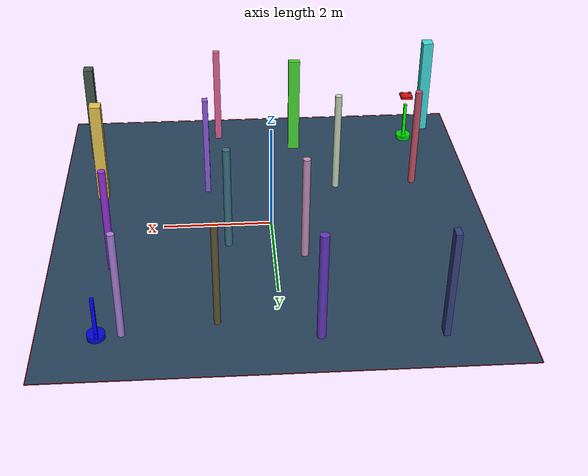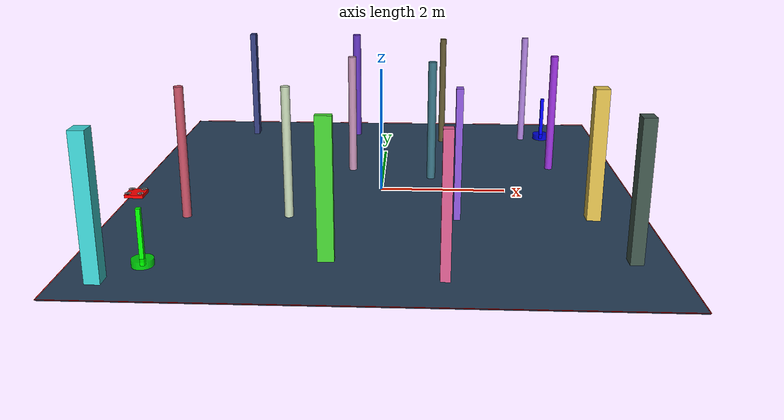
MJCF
<?xml version='1.0' encoding='utf-8'?>
<mujoco model="complex_uav_env">
  <compiler angle="degree" coordinate="local" inertiafromgeom="true" />
  <option integrator="RK4" timestep="0.01" />

  <visual>
    <headlight diffuse="0.6 0.6 0.6" ambient="0.3 0.3 0.3" />
    <rgba haze="0.15 0.25 0.35 1" />
    <global offwidth="2560" offheight="1440" />
  </visual>

  <asset>
    <texture type="skybox" builtin="gradient" rgb1="0.3 0.5 0.7" rgb2="0 0 0" width="512" height="3072" />
    <texture name="grid" type="2d" builtin="checker" rgb1="0.1 0.2 0.3" rgb2="0.2 0.3 0.4" width="512" height="512" />
    <material name="grid" texture="grid" texrepeat="1 1" />
  </asset>

  <worldbody>

    <geom name="ground" type="plane" size="4.0 4.0 0.1" material="grid" />
    <light name="light1" pos="0 0 4" dir="0 0 -1" diffuse="1 1 1" />

    <geom name="start_marker" type="cylinder" size="0.15 0.05" pos="-3.0 -3.0 0.05" rgba="0 1 0 0.8" />
    <geom name="start_pole" type="box" size="0.03 0.03 0.4" pos="-3.0 -3.0 0.4" rgba="0 1 0 1" />

    <geom name="goal_marker" type="cylinder" size="0.15 0.05" pos="3.0 3.0 0.05" rgba="0 0 1 0.8" />
    <geom name="goal_pole" type="box" size="0.03 0.03 0.4" pos="3.0 3.0 0.4" rgba="0 0 1 1" />

    <body name="chassis" pos="-3.0 -3.0 1.0">
      <joint type="free" name="root" />
      <geom type="box" size="0.12 0.12 0.02" rgba="1.0 0.0 0.0 1.0" mass="0.8" />

      <geom type="box" size="0.08 0.01 0.005" pos="0 0 0.01" rgba="0.3 0.3 0.3 1" />
      <geom type="box" size="0.01 0.08 0.005" pos="0 0 0.01" rgba="0.3 0.3 0.3 1" />

      <geom type="cylinder" size="0.015 0.02" pos="0.08 0.08 0.015" rgba="0.2 0.2 0.2 1" />
      <geom type="cylinder" size="0.015 0.02" pos="-0.08 0.08 0.015" rgba="0.2 0.2 0.2 1" />
      <geom type="cylinder" size="0.015 0.02" pos="0.08 -0.08 0.015" rgba="0.2 0.2 0.2 1" />
      <geom type="cylinder" size="0.015 0.02" pos="-0.08 -0.08 0.015" rgba="0.2 0.2 0.2 1" />

      <geom type="cylinder" size="0.04 0.002" pos="0.08 0.08 0.035" rgba="0.7 0.7 0.7 0.8" />
      <geom type="cylinder" size="0.04 0.002" pos="-0.08 0.08 0.035" rgba="0.7 0.7 0.7 0.8" />
      <geom type="cylinder" size="0.04 0.002" pos="0.08 -0.08 0.035" rgba="0.7 0.7 0.7 0.8" />
      <geom type="cylinder" size="0.04 0.002" pos="-0.08 -0.08 0.035" rgba="0.7 0.7 0.7 0.8" />

      <site name="motor1" pos="0.08 0.08 0" size="0.01" />
      <site name="motor2" pos="-0.08 0.08 0" size="0.01" />
      <site name="motor3" pos="0.08 -0.08 0" size="0.01" />
      <site name="motor4" pos="-0.08 -0.08 0" size="0.01" />
    </body>
    <geom name="test_obs_0" type="box" size="0.050372097743241556 0.07686035712315534 1.0" pos="1.1732947084151437 -1.211486841254944 1.0" rgba="0.5469274306329154 0.33994185508817215 0.8533498409059768 1.0" />
    <geom name="test_obs_1" type="box" size="0.09026984959424886 0.10595794646870768 1.0" pos="3.4594203862787163 -2.638834159122047 1.0" rgba="0.24882710280572873 0.3367319054094219 0.29914715805267766 1.0" />
    <geom name="test_obs_2" type="cylinder" size="0.06962309159626799 1.0" pos="0.8140963827337322 0.6057663253539787 1.0" rgba="0.2215825680361726 0.4436480842266488 0.5124176641756438 1.0" />
    <geom name="test_obs_3" type="box" size="0.11204272233949872 0.05538453414986839 1.0" pos="-0.6208580345521534 -2.7487935140448387 1.0" rgba="0.27310180140784174 0.8353760195839833 0.19536981751386773 1.0" />
    <geom name="test_obs_4" type="cylinder" size="0.07633028411386941 1.0" pos="-0.6115806755378007 3.1700394498370295 1.0" rgba="0.3853860596668395 0.20376915335221524 0.7405742647397555 1.0" />
    <geom name="test_obs_5" type="cylinder" size="0.06628990166646978 1.0" pos="-1.3393057625726863 -1.219352922443493 1.0" rgba="0.7662184254010138 0.8355233093657625 0.70649461786815 1.0" />
    <geom name="test_obs_6" type="cylinder" size="0.05687273672384668 1.0" pos="1.0515887990076727 2.7528416684239487 1.0" rgba="0.3808448255035952 0.33824628205815027 0.19350475154396796 1.0" />
    <geom name="test_obs_7" type="box" size="0.06607586645287844 0.05758668297783171 1.0" pos="0.938504277806419 -3.271503481050828 1.0" rgba="0.8621960879663436 0.3680997921273088 0.5648199075430234 1.0" />
    <geom name="test_obs_8" type="cylinder" size="0.0671995687718927 1.0" pos="-2.871181255201575 -1.288496345430394 1.0" rgba="0.7645567268593569 0.31111505150869956 0.391674459928509 1.0" />
    <geom name="test_obs_9" type="cylinder" size="0.06502354002230988 1.0" pos="2.8848829513936236 1.1750581524039871 1.0" rgba="0.5940713488044908 0.18697977082244632 0.8495790088017925 1.0" />
    <geom name="test_obs_10" type="box" size="0.10433216153345184 0.11292386823495024 1.0" pos="-3.4592350799360965 -3.4674056392058956 1.0" rgba="0.24351994701371416 0.8385886283674422 0.8460139893349917 1.0" />
    <geom name="test_obs_11" type="box" size="0.05173931601946187 0.0973245750744821 1.0" pos="-2.629675358152134 3.199878780282026 1.0" rgba="0.2006305192635824 0.23933198708030823 0.4946496566754013 1.0" />
    <geom name="test_obs_12" type="cylinder" size="0.0677334142776701 1.0" pos="-0.5391068948784221 0.9950609432810956 1.0" rgba="0.7483994991116244 0.5558622901732083 0.6956722077127673 1.0" />
    <geom name="test_obs_13" type="cylinder" size="0.06032982998038072 1.0" pos="2.604238464573329 2.951128820778203 1.0" rgba="0.6655930659973089 0.4932337341612051 0.8441331908158926 1.0" />
    <geom name="test_obs_14" type="box" size="0.10355313662223736 0.1060211526233944 1.0" pos="3.19816146616777 -1.122815326903856 1.0" rgba="0.8874368296336085 0.7583797232007965 0.30624546035815436 1.0" />
  <geom name="boundary_north" type="box" size="4.0 0.005 0.002" pos="0 4.0 0.002" rgba="1.0 0.0 0.0 1.0" /><geom name="boundary_south" type="box" size="4.0 0.005 0.002" pos="0 -4.0 0.002" rgba="1.0 0.0 0.0 1.0" /><geom name="boundary_east" type="box" size="0.005 4.0 0.002" pos="4.0 0 0.002" rgba="1.0 0.0 0.0 1.0" /><geom name="boundary_west" type="box" size="0.005 4.0 0.002" pos="-4.0 0 0.002" rgba="1.0 0.0 0.0 1.0" /></worldbody>

  <actuator>
    <motor name="m1" gear="0 0 1 0 0 0" site="motor1" />
    <motor name="m2" gear="0 0 1 0 0 0" site="motor2" />
    <motor name="m3" gear="0 0 1 0 0 0" site="motor3" />
    <motor name="m4" gear="0 0 1 0 0 0" site="motor4" />
  </actuator>
</mujoco>
